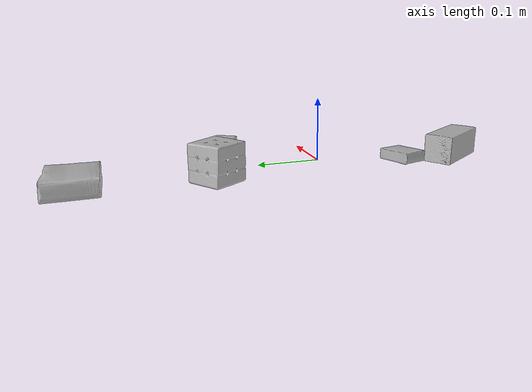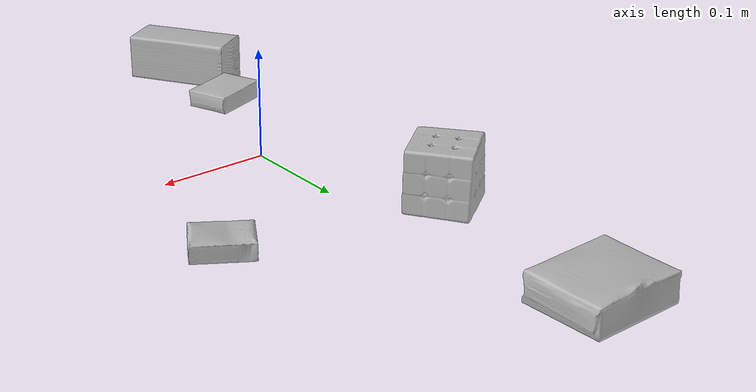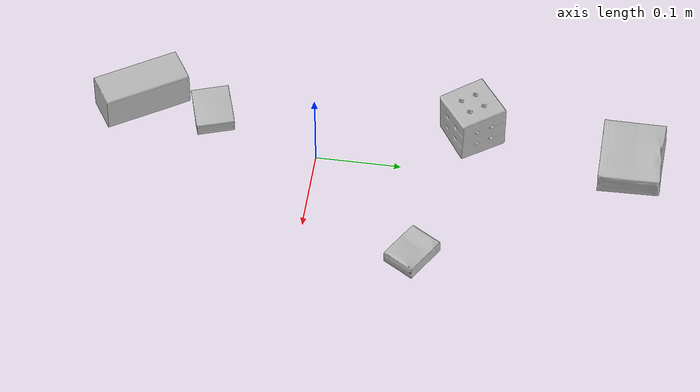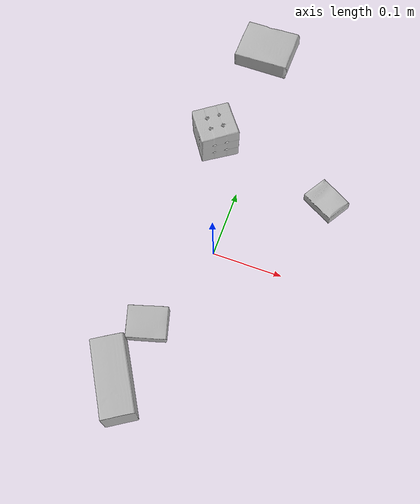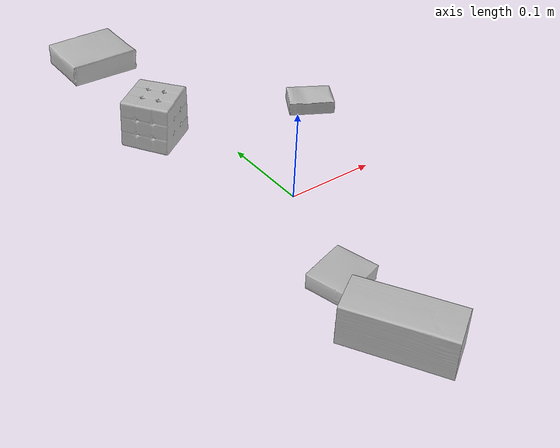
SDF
<sdf version="1.4">
  <world name="default">
    <light name="light1" type="point">
      <pose>0 0 1 0 0 0</pose>
      <diffuse>3 3 3 1</diffuse>
      <specular>3 3 3 1</specular>
    </light>
    <light name="light2" type="point">
      <pose>0 0.5 2 0 0 0</pose>
      <diffuse>1 1 1 1</diffuse>
      <specular>1 1 1 1</specular>
    </light>
    <light name="light3" type="point">
      <pose>0 0.5 2 0 0 0</pose>
      <diffuse>3 3 3 1</diffuse>
      <specular>3 3 3 1</specular>
    </light>
    <scene>
      <ambient>0.7 0.7 0.7</ambient>
    </scene>
    <model name="box1">
      <link name="link_box1">
        <collision name="default">
          <geometry>
            <mesh>
              <uri>model://rubiks_cube/collision_meshes/collision.obj</uri>
              <scale>1.0 1.0 1.0</scale>
            </mesh>
          </geometry>
          <surface>
            <friction>
              <ode>
                <mu>0.5</mu>
                <mu2>0.5</mu2>
              </ode>
            </friction>
          <contact>
        <ode>
            <max_vel>0</max_vel>
            <min_depth>0.0001</min_depth>
            <kp>1e8</kp>
        </ode>
    </contact></surface>
        </collision>
        <visual name="default">
          <geometry>
            <mesh>
              <uri>model://rubiks_cube/visual_meshes/visual.dae</uri>
              <scale>1.0 1.0 1.0</scale>
            </mesh>
          </geometry>
        </visual>
        <inertial>
          <mass>0.16542086005210876</mass>
          <pose>2.6721041649580002e-05 5.256967051536776e-05 -7.264316536748083e-06 -0.054673137900176624 -0.09813866632394339 -0.03445580911338559</pose>
          <inertia>
            <ixx>9.140613e-05</ixx>
            <iyy>9.097988e-05</iyy>
            <izz>9.216359e-05</izz>
            <ixy>0</ixy>
            <ixz>0</ixz>
            <iyz>0</iyz>
          </inertia>
        </inertial>
      </link>
      <pose>-0.06039223447442055 0.17522583901882172 0.028678961098194122 -3.34869895222282e-06 -1.2896917956053475e-06 0.6346726244485298</pose>
    </model>
    <model name="box2">
      <link name="link_box2">
        <collision name="default">
          <geometry>
            <mesh>
              <uri>model://cracker_box/collision_meshes/collision.obj</uri>
              <scale>0.25 0.25 0.25</scale>
            </mesh>
          </geometry>
          <surface>
            <friction>
              <ode>
                <mu>0.5</mu>
                <mu2>0.5</mu2>
              </ode>
            </friction>
          <contact>
        <ode>
            <max_vel>0</max_vel>
            <min_depth>0.0001</min_depth>
            <kp>1e8</kp>
        </ode>
    </contact></surface>
        </collision>
        <visual name="default">
          <geometry>
            <mesh>
              <uri>model://cracker_box/visual_meshes/visual.dae</uri>
              <scale>0.25 0.25 0.25</scale>
            </mesh>
          </geometry>
        </visual>
        <inertial>
          <mass>0.04381135478615761</mass>
          <pose>0.00023660462466068566 6.358561222441494e-05 -0.0004257383698131889 -0.00031620747829542317 -0.011106489600678707 0.002546794302661479</pose>
          <inertia>
            <ixx>6.9647826e-06</ixx>
            <iyy>1.1500225e-05</iyy>
            <izz>1.6411877e-05</izz>
            <ixy>0</ixy>
            <ixz>0</ixz>
            <iyz>0</iyz>
          </inertia>
        </inertial>
      </link>
      <pose>0.1272566020488739 0.13042446970939636 0.009120453149080276 -0.011788039077676558 -0.007367210341728211 -0.5398776972966409</pose>
    </model>
    <model name="box3">
      <link name="link_box3">
        <collision name="default">
          <geometry>
            <mesh>
              <uri>model://gelatin_box/collision_meshes/collision.obj</uri>
              <scale>1.0 1.0 1.0</scale>
            </mesh>
          </geometry>
          <surface>
            <friction>
              <ode>
                <mu>0.5</mu>
                <mu2>0.5</mu2>
              </ode>
            </friction>
          <contact>
        <ode>
            <max_vel>0</max_vel>
            <min_depth>0.0001</min_depth>
            <kp>1e8</kp>
        </ode>
    </contact></surface>
        </collision>
        <visual name="default">
          <geometry>
            <mesh>
              <uri>model://gelatin_box/visual_meshes/visual.dae</uri>
              <scale>1.0 1.0 1.0</scale>
            </mesh>
          </geometry>
        </visual>
        <inertial>
          <mass>0.23367169499397278</mass>
          <pose>0.0004319618456065655 0.00011156871914863586 -0.0003640321083366871 -0.0010503719733775277 -0.004755817758083372 0.016440561333906818</pose>
          <inertia>
            <ixx>0.00016495313</ixx>
            <iyy>0.00011782518</iyy>
            <izz>0.00025109548</izz>
            <ixy>0</ixy>
            <ixz>0</ixz>
            <iyz>0</iyz>
          </inertia>
        </inertial>
      </link>
      <pose>-0.03999938815832138 0.3632403314113617 0.015168312937021255 0.005596467334985152 -0.007303471474674216 1.5634527242576646</pose>
    </model>
    <model name="box4">
      <link name="link_box4">
        <collision name="default">
          <geometry>
            <mesh>
              <uri>model://wood_block/collision_meshes/collision.obj</uri>
              <scale>0.5 0.5 0.5</scale>
            </mesh>
          </geometry>
          <surface>
            <friction>
              <ode>
                <mu>0.5</mu>
                <mu2>0.5</mu2>
              </ode>
            </friction>
          <contact>
        <ode>
            <max_vel>0</max_vel>
            <min_depth>0.0001</min_depth>
            <kp>1e8</kp>
        </ode>
    </contact></surface>
        </collision>
        <visual name="default">
          <geometry>
            <mesh>
              <uri>model://wood_block/visual_meshes/visual.dae</uri>
              <scale>0.5 0.5 0.5</scale>
            </mesh>
          </geometry>
        </visual>
        <inertial>
          <mass>0.20833587646484375</mass>
          <pose>-2.9066577553749084e-06 -0.000285404734313488 0.00013204291462898254 -0.05220975529367638 -0.0051926946165042134 -0.0068613779519224715</pose>
          <inertia>
            <ixx>6.9696216e-05</ixx>
            <iyy>0.0002201704</iyy>
            <izz>0.00021934687</izz>
            <ixy>0</ixy>
            <ixz>0</ixz>
            <iyz>0</iyz>
          </inertia>
        </inertial>
      </link>
      <pose>-0.054539863020181656 -0.21350380778312683 0.02262927033007145 -0.0052083364544403665 0.005718734359728671 2.1288271942300607</pose>
    </model>
    <model name="box5">
      <link name="link_box5">
        <collision name="default">
          <geometry>
            <mesh>
              <uri>model://pudding_box/collision_meshes/collision.obj</uri>
              <scale>0.5 0.5 0.5</scale>
            </mesh>
          </geometry>
          <surface>
            <friction>
              <ode>
                <mu>0.5</mu>
                <mu2>0.5</mu2>
              </ode>
            </friction>
          <contact>
        <ode>
            <max_vel>0</max_vel>
            <min_depth>0.0001</min_depth>
            <kp>1e8</kp>
        </ode>
    </contact></surface>
        </collision>
        <visual name="default">
          <geometry>
            <mesh>
              <uri>model://pudding_box/visual_meshes/visual.dae</uri>
              <scale>0.5 0.5 0.5</scale>
            </mesh>
          </geometry>
        </visual>
        <inertial>
          <mass>0.032720133662223816</mass>
          <pose>0.00024474109522998333 0.0004033942532259971 -0.0002594413817860186 0.005213102275410761 -0.0066037963999523224 0.020079827026921356</pose>
          <inertia>
            <ixx>9.2471055e-06</ixx>
            <iyy>6.221519e-06</iyy>
            <izz>1.3655769e-05</izz>
            <ixy>0</ixy>
            <ixz>0</ixz>
            <iyz>0</iyz>
          </inertia>
        </inertial>
      </link>
      <pose>-0.04578160122036934 -0.1286265105009079 0.009862900711596012 0.022348514656499778 -0.011391706055094921 1.8674885455296864</pose>
    </model>
  <physics type="ode">
      <max_contacts>50</max_contacts>
      <ode>
        <solver>
          <type>quick</type>
          <iters>75</iters>
        </solver>
        <constraints>
          <contact_max_correcting_vel>0</contact_max_correcting_vel>
          <contact_surface_layer>0</contact_surface_layer>
        </constraints>
      </ode>
    </physics></world>
</sdf>
